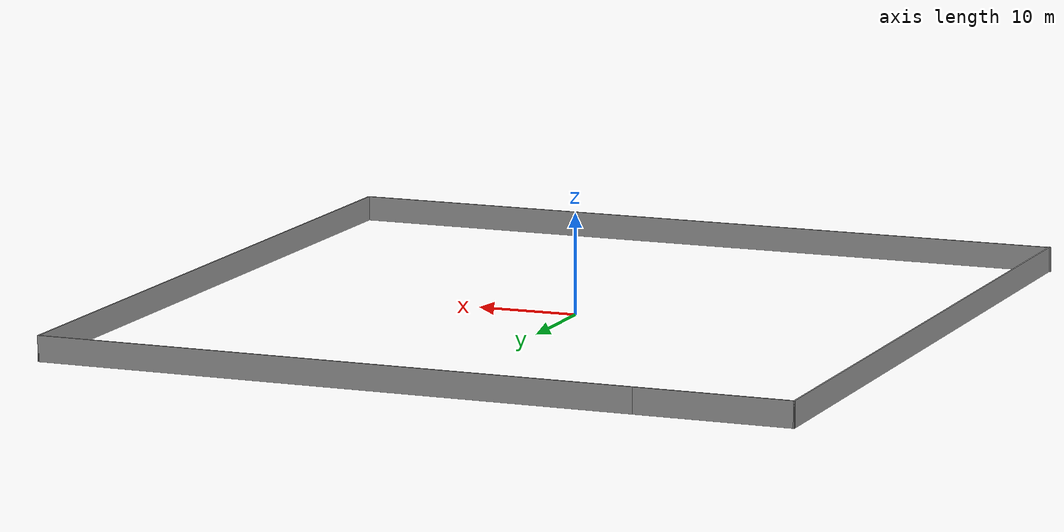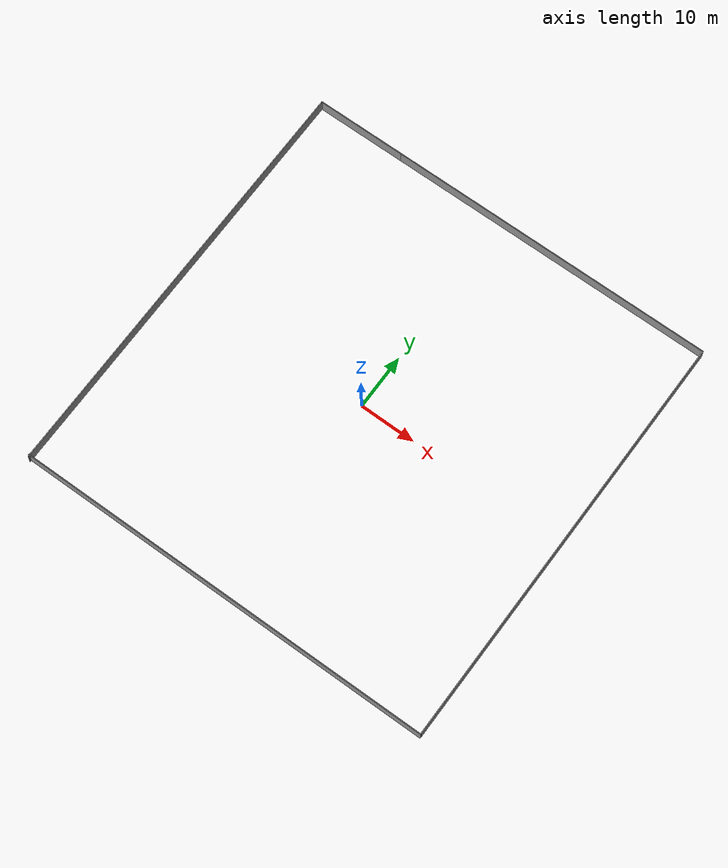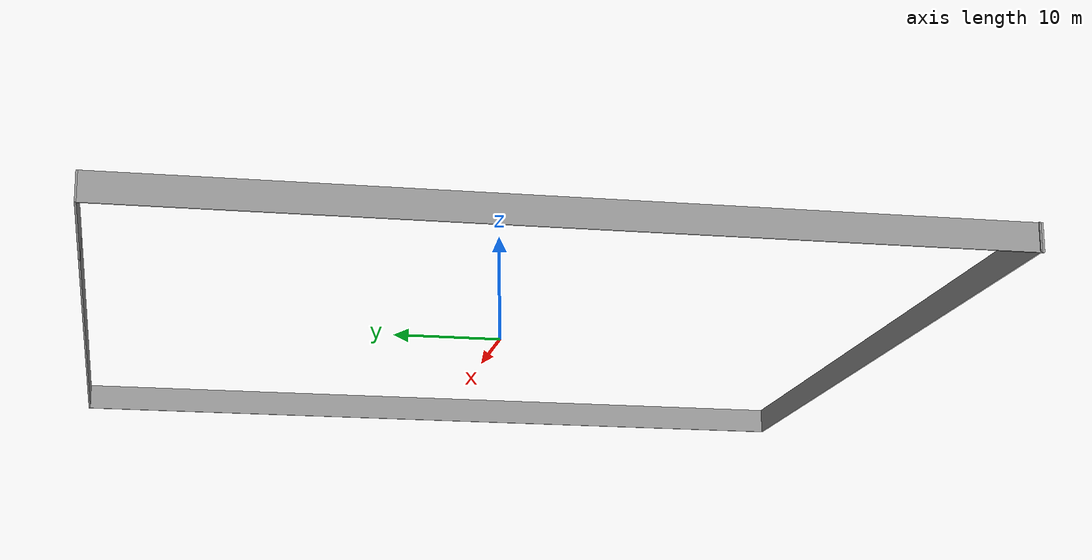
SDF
<?xml version='1.0'?>
<sdf version='1.6'>
  <model name='Outdoors_Surrounding_wall'>
    <pose frame=''>1.04886 0.270647 0 0 -0 0</pose>
    <link name='Wall_10'>
      <collision name='Wall_10_Collision'>
        <geometry>
          <box>
            <size>76.25 0.15 2.5</size>
          </box>
        </geometry>
        <pose frame=''>0 0 1.25 0 -0 0</pose>
      </collision>
      <visual name='Wall_10_Visual'>
        <pose frame=''>0 0 1.25 0 -0 0</pose>
        <geometry>
          <box>
            <size>76.25 0.15 2.5</size>
          </box>
        </geometry>
        <material>
          <script>
            <uri>file://media/materials/scripts/gazebo.material</uri>
            <name>Gazebo/Grey</name>
          </script>
          <ambient>1 1 1 1</ambient>
        </material>
      </visual>
      <pose frame=''>-37.1674 -0.000397 0 0 0 -1.5708</pose>
    </link>
    <link name='Wall_2'>
      <collision name='Wall_2_Collision'>
        <geometry>
          <box>
            <size>59.25 0.15 2.5</size>
          </box>
        </geometry>
        <pose frame=''>0 0 1.25 0 -0 0</pose>
      </collision>
      <visual name='Wall_2_Visual'>
        <pose frame=''>0 0 1.25 0 -0 0</pose>
        <geometry>
          <box>
            <size>59.25 0.15 2.5</size>
          </box>
        </geometry>
        <material>
          <script>
            <uri>file://media/materials/scripts/gazebo.material</uri>
            <name>Gazebo/Grey</name>
          </script>
          <ambient>1 1 1 1</ambient>
        </material>
      </visual>
      <pose frame=''>7.75 38.0504 0 0 -0 0</pose>
    </link>
    <link name='Wall_3'>
      <collision name='Wall_3_Collision'>
        <geometry>
          <box>
            <size>76 0.15 2.5</size>
          </box>
        </geometry>
        <pose frame=''>0 0 1.25 0 -0 0</pose>
      </collision>
      <visual name='Wall_3_Visual'>
        <pose frame=''>0 0 1.25 0 -0 0</pose>
        <geometry>
          <box>
            <size>76 0.15 2.5</size>
          </box>
        </geometry>
        <material>
          <script>
            <uri>file://media/materials/scripts/gazebo.material</uri>
            <name>Gazebo/Grey</name>
          </script>
          <ambient>1 1 1 1</ambient>
        </material>
      </visual>
      <pose frame=''>37.3 0.125394 0 0 0 -1.5708</pose>
    </link>
    <link name='Wall_4'>
      <collision name='Wall_4_Collision'>
        <geometry>
          <box>
            <size>74.75 0.15 2.5</size>
          </box>
        </geometry>
        <pose frame=''>0 0 1.25 0 -0 0</pose>
      </collision>
      <visual name='Wall_4_Visual'>
        <pose frame=''>0 0 1.25 0 -0 0</pose>
        <geometry>
          <box>
            <size>74.75 0.15 2.5</size>
          </box>
        </geometry>
        <material>
          <script>
            <uri>file://media/materials/scripts/gazebo.material</uri>
            <name>Gazebo/Grey</name>
          </script>
          <ambient>1 1 1 1</ambient>
        </material>
      </visual>
      <pose frame=''>-2e-06 -37.7996 0 0 -0 3.14159</pose>
    </link>
    <link name='Wall_7'>
      <collision name='Wall_7_Collision'>
        <geometry>
          <box>
            <size>16 0.15 2.5</size>
          </box>
        </geometry>
        <pose frame=''>0 0 1.25 0 -0 0</pose>
      </collision>
      <visual name='Wall_7_Visual'>
        <pose frame=''>0 0 1.25 0 -0 0</pose>
        <geometry>
          <box>
            <size>16 0.15 2.5</size>
          </box>
        </geometry>
        <material>
          <script>
            <uri>file://media/materials/scripts/gazebo.material</uri>
            <name>Gazebo/Grey</name>
          </script>
          <ambient>1 1 1 1</ambient>
        </material>
      </visual>
      <pose frame=''>-29.2424 38.0496 0 0 -0 3.14159</pose>
    </link>
    <static>1</static>
  </model>
</sdf>
